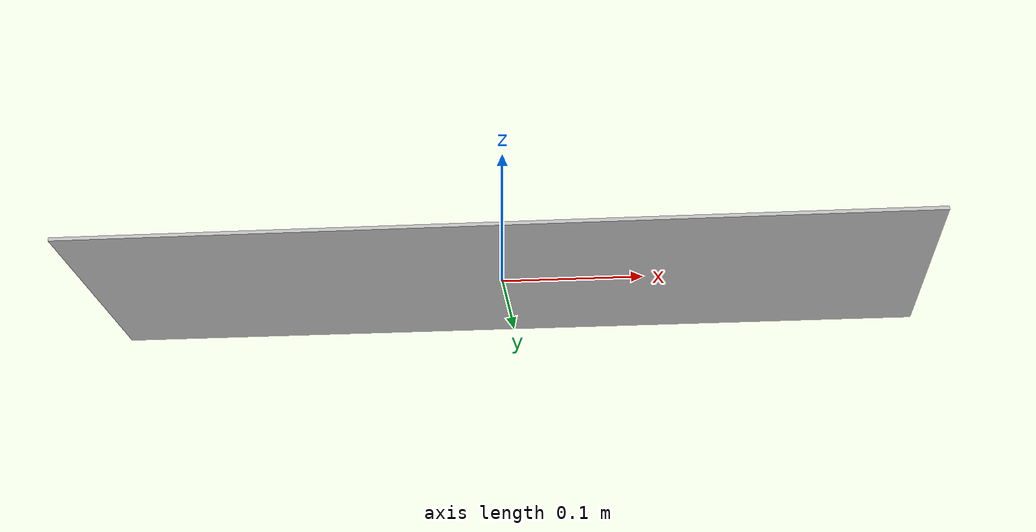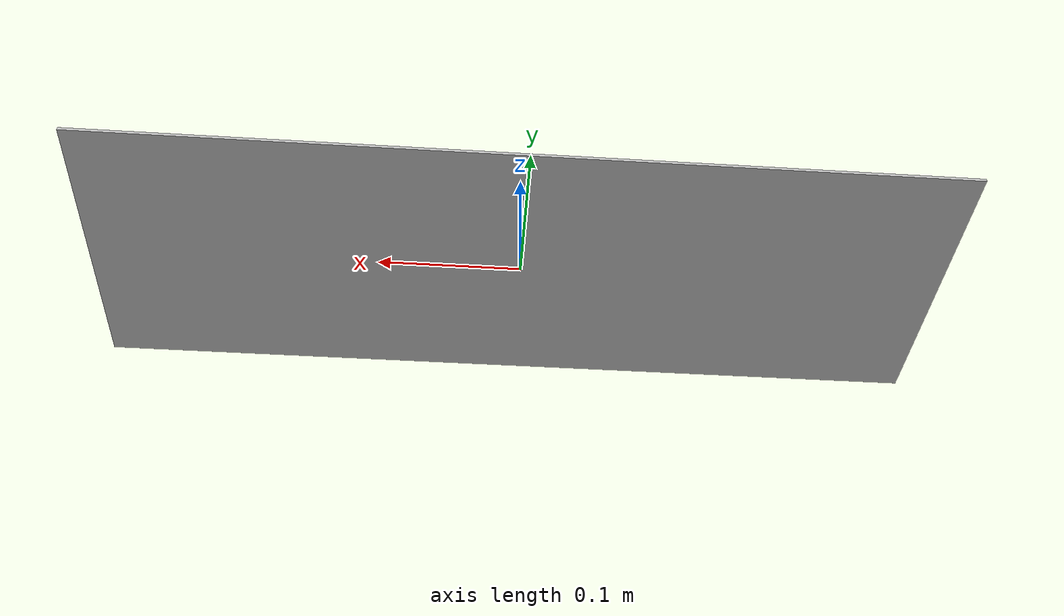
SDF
<?xml version="1.0" ?><sdf version="1.6">
  <model name="artag_background">
    <static>true</static>
    <link name="link">
      <visual name="visual">
        <geometry>
          <mesh>
            <uri>model://artag_background/meshes/background.dae</uri>
          </mesh>
        </geometry>
      </visual>
    </link>
  </model>
</sdf>
